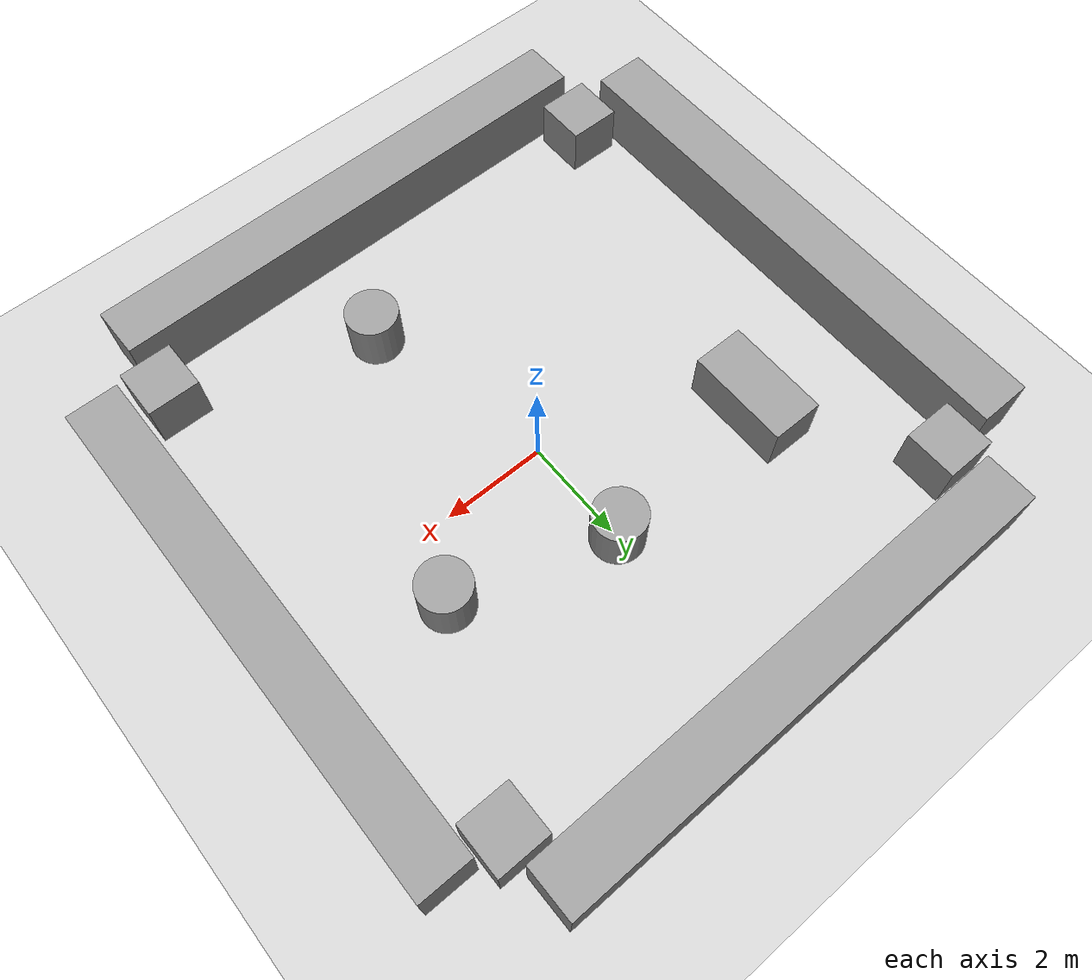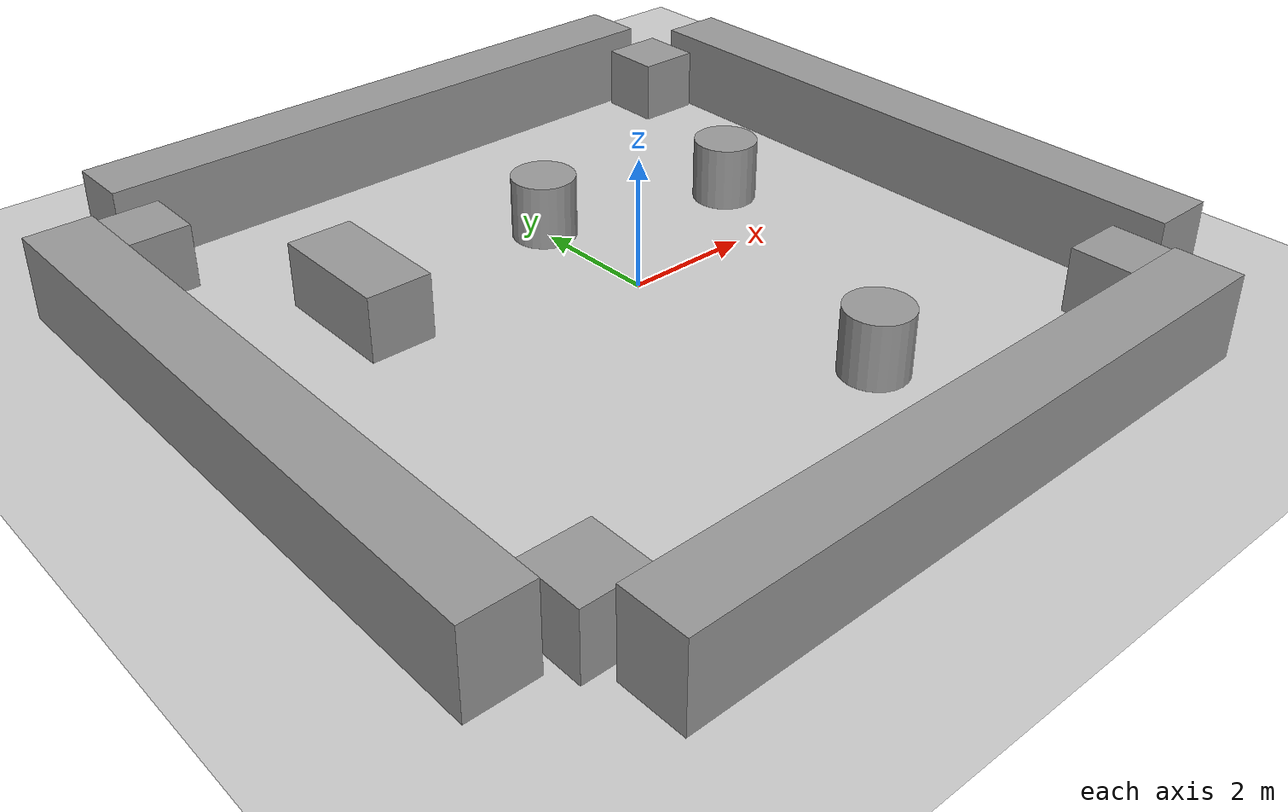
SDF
<sdf version="1.7">
 <world name="default">
  <light name="sun" type="directional">
   <pose>0 0 10 0 -0 0</pose>
   <diffuse>0.8 0.8 0.8 1</diffuse>
   <specular>0.2 0.2 0.2 1</specular>
   <attenuation>
    <range>1000</range>
    <constant>0.9</constant>
    <linear>0.01</linear>
    <quadratic>0.001</quadratic>
   </attenuation>
   <direction>-0.5 0.1 -0.9</direction>
   <spot><inner_angle>0</inner_angle><outer_angle>0</outer_angle><falloff>0</falloff></spot>
  </light>
  <model name="ground_plane">
   <static>1</static>
   <link name="link">
    <collision name="collision">
     <geometry><plane><normal>0 0 1</normal><size>100 100</size></plane></geometry>
     <surface>
      <contact><collide_bitmask>65535</collide_bitmask></contact>
      <friction><ode><mu>100</mu><mu2>50</mu2></ode></friction>
     </surface>
    </collision>
    <visual name="visual">
     <cast_shadows>0</cast_shadows>
     <geometry><plane><normal>0 0 1</normal><size>100 100</size></plane></geometry>
     <material>
      <script><uri>file://media/materials/scripts/gazebo.material</uri><name>Gazebo/Grey</name></script>
     </material>
    </visual>
   </link>
  </model>
  <gravity>0 0 -9.8</gravity>
  <magnetic_field>6e-06 2.3e-05 -4.2e-05</magnetic_field>
  <atmosphere type="adiabatic"/>
  <physics type="ode">
   <max_step_size>0.001</max_step_size>
   <real_time_factor>1</real_time_factor>
   <real_time_update_rate>1000</real_time_update_rate>
  </physics>
  <scene><ambient>0.4 0.4 0.4 1</ambient><background>0.7 0.7 0.7 1</background><shadows>1</shadows></scene>
  <spherical_coordinates>
   <surface_model>EARTH_WGS84</surface_model>
   <latitude_deg>0</latitude_deg>
   <longitude_deg>0</longitude_deg>
   <elevation>0</elevation>
   <heading_deg>0</heading_deg>
  </spherical_coordinates>
  <model name="unit_box">
   <link name="link">
    <inertial>
     <mass>1</mass>
     <inertia><ixx>2</ixx><ixy>0</ixy><ixz>0</ixz><iyy>100</iyy><iyz>0</iyz><izz>10</izz></inertia>
    </inertial>
    <pose>3.04176 0.115708 -0 0 -0 0</pose>
    <visual name="visual">
     <geometry><box><size>1 10 1.5</size></box></geometry>
     <material>
      <script><name>Gazebo/Grey</name><uri>file://media/materials/scripts/gazebo.material</uri></script>
      <shader type="pixel"><normal_map>__default__</normal_map></shader>
      <ambient>0.3 0.3 0.3 1</ambient>
      <diffuse>0.7 0.7 0.7 1</diffuse>
      <specular>0.01 0.01 0.01 1</specular>
      <emissive>0 0 0 1</emissive>
     </material>
    </visual>
    <collision name="collision">
     <geometry><box><size>1 10 1</size></box></geometry>
     <surface>
      <friction>
       <ode><mu>1</mu><mu2>1</mu2><fdir1>0 0 0</fdir1><slip1>0</slip1><slip2>0</slip2></ode>
       <torsional>
        <coefficient>1</coefficient>
        <patch_radius>0</patch_radius>
        <surface_radius>0</surface_radius>
        <use_patch_radius>1</use_patch_radius>
        <ode><slip>0</slip></ode>
       </torsional>
      </friction>
      <bounce><restitution_coefficient>0</restitution_coefficient><threshold>1e+06</threshold></bounce>
      <contact>
       <collide_without_contact>0</collide_without_contact>
       <collide_without_contact_bitmask>1</collide_without_contact_bitmask>
       <collide_bitmask>1</collide_bitmask>
       <ode>
        <soft_cfm>0</soft_cfm>
        <soft_erp>0.2</soft_erp>
        <kp>1e+13</kp>
        <kd>1</kd>
        <max_vel>0.01</max_vel>
        <min_depth>0</min_depth>
       </ode>
       <bullet>
        <split_impulse>1</split_impulse>
        <split_impulse_penetration_threshold>-0.01</split_impulse_penetration_threshold>
        <soft_cfm>0</soft_cfm>
        <soft_erp>0.2</soft_erp>
        <kp>1e+13</kp>
        <kd>1</kd>
       </bullet>
      </contact>
     </surface>
    </collision>
   </link>
   <link name="link_10">
    <inertial>
     <mass>1</mass>
     <inertia><ixx>0.145833</ixx><ixy>0</ixy><ixz>0</ixz><iyy>0.145833</iyy><iyz>0</iyz><izz>0.125</izz></inertia>
    </inertial>
    <pose>-1.77229 -3.46961 0 0 -0 0</pose>
    <visual name="visual">
     <geometry><cylinder><radius>0.5</radius><length>1</length></cylinder></geometry>
     <material>
      <lighting>1</lighting>
      <script><uri>file://media/materials/scripts/gazebo.material</uri><name>Gazebo/Grey</name></script>
      <shader type="pixel"/>
     </material>
    </visual>
    <collision name="collision">
     <geometry><cylinder><radius>0.5</radius><length>1</length></cylinder></geometry>
     <surface>
      <friction>
       <ode><mu>1</mu><mu2>1</mu2><fdir1>0 0 0</fdir1><slip1>0</slip1><slip2>0</slip2></ode>
       <torsional>
        <coefficient>1</coefficient>
        <patch_radius>0</patch_radius>
        <surface_radius>0</surface_radius>
        <use_patch_radius>1</use_patch_radius>
        <ode><slip>0</slip></ode>
       </torsional>
      </friction>
      <bounce><restitution_coefficient>0</restitution_coefficient><threshold>1e+06</threshold></bounce>
      <contact>
       <collide_without_contact>0</collide_without_contact>
       <collide_without_contact_bitmask>1</collide_without_contact_bitmask>
       <collide_bitmask>1</collide_bitmask>
       <ode>
        <soft_cfm>0</soft_cfm>
        <soft_erp>0.2</soft_erp>
        <kp>1e+13</kp>
        <kd>1</kd>
        <max_vel>0.01</max_vel>
        <min_depth>0</min_depth>
       </ode>
       <bullet>
        <split_impulse>1</split_impulse>
        <split_impulse_penetration_threshold>-0.01</split_impulse_penetration_threshold>
        <soft_cfm>0</soft_cfm>
        <soft_erp>0.2</soft_erp>
        <kp>1e+13</kp>
        <kd>1</kd>
       </bullet>
      </contact>
     </surface>
    </collision>
   </link>
   <link name="link_12">
    <inertial>
     <mass>1</mass>
     <inertia><ixx>0.145833</ixx><ixy>0</ixy><ixz>0</ixz><iyy>0.145833</iyy><iyz>0</iyz><izz>0.125</izz></inertia>
    </inertial>
    <pose>-2.62066 2.38376 -0 0 -0 0</pose>
    <visual name="visual">
     <geometry><cylinder><radius>0.5</radius><length>1</length></cylinder></geometry>
     <material>
      <lighting>1</lighting>
      <script><uri>file://media/materials/scripts/gazebo.material</uri><name>Gazebo/Grey</name></script>
      <shader type="pixel"/>
     </material>
    </visual>
    <collision name="collision">
     <geometry><cylinder><radius>0.5</radius><length>1</length></cylinder></geometry>
     <surface>
      <friction>
       <ode><mu>1</mu><mu2>1</mu2><fdir1>0 0 0</fdir1><slip1>0</slip1><slip2>0</slip2></ode>
       <torsional>
        <coefficient>1</coefficient>
        <patch_radius>0</patch_radius>
        <surface_radius>0</surface_radius>
        <use_patch_radius>1</use_patch_radius>
        <ode><slip>0</slip></ode>
       </torsional>
      </friction>
      <bounce><restitution_coefficient>0</restitution_coefficient><threshold>1e+06</threshold></bounce>
      <contact>
       <collide_without_contact>0</collide_without_contact>
       <collide_without_contact_bitmask>1</collide_without_contact_bitmask>
       <collide_bitmask>1</collide_bitmask>
       <ode>
        <soft_cfm>0</soft_cfm>
        <soft_erp>0.2</soft_erp>
        <kp>1e+13</kp>
        <kd>1</kd>
        <max_vel>0.01</max_vel>
        <min_depth>0</min_depth>
       </ode>
       <bullet>
        <split_impulse>1</split_impulse>
        <split_impulse_penetration_threshold>-0.01</split_impulse_penetration_threshold>
        <soft_cfm>0</soft_cfm>
        <soft_erp>0.2</soft_erp>
        <kp>1e+13</kp>
        <kd>1</kd>
       </bullet>
      </contact>
     </surface>
    </collision>
   </link>
   <link name="link_3">
    <inertial>
     <mass>1</mass>
     <inertia>
      <ixx>0.166667</ixx>
      <ixy>0</ixy>
      <ixz>0</ixz>
      <iyy>0.166667</iyy>
      <iyz>0</iyz>
      <izz>0.166667</izz>
     </inertia>
    </inertial>
    <pose>1.95999 5.03955 -0 0 -0 0</pose>
    <visual name="visual">
     <geometry><box><size>1 1 1</size></box></geometry>
     <material>
      <lighting>1</lighting>
      <script><uri>file://media/materials/scripts/gazebo.material</uri><name>Gazebo/Grey</name></script>
      <shader type="pixel"/>
     </material>
    </visual>
    <collision name="collision">
     <geometry><box><size>1 1 1</size></box></geometry>
     <surface>
      <friction>
       <ode><mu>1</mu><mu2>1</mu2><fdir1>0 0 0</fdir1><slip1>0</slip1><slip2>0</slip2></ode>
       <torsional>
        <coefficient>1</coefficient>
        <patch_radius>0</patch_radius>
        <surface_radius>0</surface_radius>
        <use_patch_radius>1</use_patch_radius>
        <ode><slip>0</slip></ode>
       </torsional>
      </friction>
      <bounce><restitution_coefficient>0</restitution_coefficient><threshold>1e+06</threshold></bounce>
      <contact>
       <collide_without_contact>0</collide_without_contact>
       <collide_without_contact_bitmask>1</collide_without_contact_bitmask>
       <collide_bitmask>1</collide_bitmask>
       <ode>
        <soft_cfm>0</soft_cfm>
        <soft_erp>0.2</soft_erp>
        <kp>1e+13</kp>
        <kd>1</kd>
        <max_vel>0.01</max_vel>
        <min_depth>0</min_depth>
       </ode>
       <bullet>
        <split_impulse>1</split_impulse>
        <split_impulse_penetration_threshold>-0.01</split_impulse_penetration_threshold>
        <soft_cfm>0</soft_cfm>
        <soft_erp>0.2</soft_erp>
        <kp>1e+13</kp>
        <kd>1</kd>
       </bullet>
      </contact>
     </surface>
    </collision>
   </link>
   <link name="link_4">
    <inertial>
     <mass>1</mass>
     <inertia>
      <ixx>0.166667</ixx>
      <ixy>0</ixy>
      <ixz>0</ixz>
      <iyy>0.166667</iyy>
      <iyz>0</iyz>
      <izz>0.166667</izz>
     </inertia>
    </inertial>
    <pose>1.90094 -4.69157 0 0 -0 0</pose>
    <visual name="visual">
     <geometry><box><size>1 1 1</size></box></geometry>
     <material>
      <lighting>1</lighting>
      <script><uri>file://media/materials/scripts/gazebo.material</uri><name>Gazebo/Grey</name></script>
      <shader type="pixel"/>
     </material>
    </visual>
    <collision name="collision">
     <geometry><box><size>1 1 1</size></box></geometry>
     <surface>
      <friction>
       <ode><mu>1</mu><mu2>1</mu2><fdir1>0 0 0</fdir1><slip1>0</slip1><slip2>0</slip2></ode>
       <torsional>
        <coefficient>1</coefficient>
        <patch_radius>0</patch_radius>
        <surface_radius>0</surface_radius>
        <use_patch_radius>1</use_patch_radius>
        <ode><slip>0</slip></ode>
       </torsional>
      </friction>
      <bounce><restitution_coefficient>0</restitution_coefficient><threshold>1e+06</threshold></bounce>
      <contact>
       <collide_without_contact>0</collide_without_contact>
       <collide_without_contact_bitmask>1</collide_without_contact_bitmask>
       <collide_bitmask>1</collide_bitmask>
       <ode>
        <soft_cfm>0</soft_cfm>
        <soft_erp>0.2</soft_erp>
        <kp>1e+13</kp>
        <kd>1</kd>
        <max_vel>0.01</max_vel>
        <min_depth>0</min_depth>
       </ode>
       <bullet>
        <split_impulse>1</split_impulse>
        <split_impulse_penetration_threshold>-0.01</split_impulse_penetration_threshold>
        <soft_cfm>0</soft_cfm>
        <soft_erp>0.2</soft_erp>
        <kp>1e+13</kp>
        <kd>1</kd>
       </bullet>
      </contact>
     </surface>
    </collision>
   </link>
   <link name="link_5">
    <inertial>
     <mass>1</mass>
     <inertia>
      <ixx>0.166667</ixx>
      <ixy>0</ixy>
      <ixz>0</ixz>
      <iyy>0.166667</iyy>
      <iyz>0</iyz>
      <izz>0.166667</izz>
     </inertia>
    </inertial>
    <pose>-7.78653 -4.76071 0 0 -0 0</pose>
    <visual name="visual">
     <geometry><box><size>1 1 1</size></box></geometry>
     <material>
      <lighting>1</lighting>
      <script><uri>file://media/materials/scripts/gazebo.material</uri><name>Gazebo/Grey</name></script>
      <shader type="pixel"/>
     </material>
    </visual>
    <collision name="collision">
     <geometry><box><size>1 1 1</size></box></geometry>
     <surface>
      <friction>
       <ode><mu>1</mu><mu2>1</mu2><fdir1>0 0 0</fdir1><slip1>0</slip1><slip2>0</slip2></ode>
       <torsional>
        <coefficient>1</coefficient>
        <patch_radius>0</patch_radius>
        <surface_radius>0</surface_radius>
        <use_patch_radius>1</use_patch_radius>
        <ode><slip>0</slip></ode>
       </torsional>
      </friction>
      <bounce><restitution_coefficient>0</restitution_coefficient><threshold>1e+06</threshold></bounce>
      <contact>
       <collide_without_contact>0</collide_without_contact>
       <collide_without_contact_bitmask>1</collide_without_contact_bitmask>
       <collide_bitmask>1</collide_bitmask>
       <ode>
        <soft_cfm>0</soft_cfm>
        <soft_erp>0.2</soft_erp>
        <kp>1e+13</kp>
        <kd>1</kd>
        <max_vel>0.01</max_vel>
        <min_depth>0</min_depth>
       </ode>
       <bullet>
        <split_impulse>1</split_impulse>
        <split_impulse_penetration_threshold>-0.01</split_impulse_penetration_threshold>
        <soft_cfm>0</soft_cfm>
        <soft_erp>0.2</soft_erp>
        <kp>1e+13</kp>
        <kd>1</kd>
       </bullet>
      </contact>
     </surface>
    </collision>
   </link>
   <link name="link_6">
    <inertial>
     <mass>1</mass>
     <inertia>
      <ixx>0.166667</ixx>
      <ixy>0</ixy>
      <ixz>0</ixz>
      <iyy>0.166667</iyy>
      <iyz>0</iyz>
      <izz>0.166667</izz>
     </inertia>
    </inertial>
    <pose>-7.86021 4.91937 -0 0 -0 0</pose>
    <visual name="visual">
     <geometry><box><size>1 1 1</size></box></geometry>
     <material>
      <lighting>1</lighting>
      <script><uri>file://media/materials/scripts/gazebo.material</uri><name>Gazebo/Grey</name></script>
      <shader type="pixel"/>
     </material>
    </visual>
    <collision name="collision">
     <geometry><box><size>1 1 1</size></box></geometry>
     <surface>
      <friction>
       <ode><mu>1</mu><mu2>1</mu2><fdir1>0 0 0</fdir1><slip1>0</slip1><slip2>0</slip2></ode>
       <torsional>
        <coefficient>1</coefficient>
        <patch_radius>0</patch_radius>
        <surface_radius>0</surface_radius>
        <use_patch_radius>1</use_patch_radius>
        <ode><slip>0</slip></ode>
       </torsional>
      </friction>
      <bounce><restitution_coefficient>0</restitution_coefficient><threshold>1e+06</threshold></bounce>
      <contact>
       <collide_without_contact>0</collide_without_contact>
       <collide_without_contact_bitmask>1</collide_without_contact_bitmask>
       <collide_bitmask>1</collide_bitmask>
       <ode>
        <soft_cfm>0</soft_cfm>
        <soft_erp>0.2</soft_erp>
        <kp>1e+13</kp>
        <kd>1</kd>
        <max_vel>0.01</max_vel>
        <min_depth>0</min_depth>
       </ode>
       <bullet>
        <split_impulse>1</split_impulse>
        <split_impulse_penetration_threshold>-0.01</split_impulse_penetration_threshold>
        <soft_cfm>0</soft_cfm>
        <soft_erp>0.2</soft_erp>
        <kp>1e+13</kp>
        <kd>1</kd>
       </bullet>
      </contact>
     </surface>
    </collision>
   </link>
   <link name="link_8">
    <inertial>
     <mass>1</mass>
     <inertia><ixx>0.145833</ixx><ixy>0</ixy><ixz>0</ixz><iyy>0.145833</iyy><iyz>0</iyz><izz>0.125</izz></inertia>
    </inertial>
    <pose>0.361877 1.50137 -0 0 -0 0</pose>
    <visual name="visual">
     <geometry><cylinder><radius>0.5</radius><length>1</length></cylinder></geometry>
     <material>
      <lighting>1</lighting>
      <script><uri>file://media/materials/scripts/gazebo.material</uri><name>Gazebo/Grey</name></script>
      <shader type="pixel"/>
     </material>
    </visual>
    <collision name="collision">
     <geometry><cylinder><radius>0.5</radius><length>1</length></cylinder></geometry>
     <surface>
      <friction>
       <ode><mu>1</mu><mu2>1</mu2><fdir1>0 0 0</fdir1><slip1>0</slip1><slip2>0</slip2></ode>
       <torsional>
        <coefficient>1</coefficient>
        <patch_radius>0</patch_radius>
        <surface_radius>0</surface_radius>
        <use_patch_radius>1</use_patch_radius>
        <ode><slip>0</slip></ode>
       </torsional>
      </friction>
      <bounce><restitution_coefficient>0</restitution_coefficient><threshold>1e+06</threshold></bounce>
      <contact>
       <collide_without_contact>0</collide_without_contact>
       <collide_without_contact_bitmask>1</collide_without_contact_bitmask>
       <collide_bitmask>1</collide_bitmask>
       <ode>
        <soft_cfm>0</soft_cfm>
        <soft_erp>0.2</soft_erp>
        <kp>1e+13</kp>
        <kd>1</kd>
        <max_vel>0.01</max_vel>
        <min_depth>0</min_depth>
       </ode>
       <bullet>
        <split_impulse>1</split_impulse>
        <split_impulse_penetration_threshold>-0.01</split_impulse_penetration_threshold>
        <soft_cfm>0</soft_cfm>
        <soft_erp>0.2</soft_erp>
        <kp>1e+13</kp>
        <kd>1</kd>
       </bullet>
      </contact>
     </surface>
    </collision>
   </link>
   <link name="link_9">
    <inertial>
     <mass>1</mass>
     <inertia>
      <ixx>0.166667</ixx>
      <ixy>0</ixy>
      <ixz>0</ixz>
      <iyy>0.166667</iyy>
      <iyz>0</iyz>
      <izz>0.166667</izz>
     </inertia>
    </inertial>
    <pose>-6.11199 2.03618 0 0 -0 0</pose>
    <visual name="visual">
     <geometry><box><size>1 2 1</size></box></geometry>
     <material>
      <lighting>1</lighting>
      <script><uri>file://media/materials/scripts/gazebo.material</uri><name>Gazebo/Grey</name></script>
      <shader type="pixel"><normal_map>__default__</normal_map></shader>
      <ambient>0.3 0.3 0.3 1</ambient>
      <diffuse>0.7 0.7 0.7 1</diffuse>
      <specular>0.01 0.01 0.01 1</specular>
      <emissive>0 0 0 1</emissive>
     </material>
    </visual>
    <collision name="collision">
     <geometry><box><size>1 2 1</size></box></geometry>
     <surface>
      <friction>
       <ode><mu>1</mu><mu2>1</mu2><fdir1>0 0 0</fdir1><slip1>0</slip1><slip2>0</slip2></ode>
       <torsional>
        <coefficient>1</coefficient>
        <patch_radius>0</patch_radius>
        <surface_radius>0</surface_radius>
        <use_patch_radius>1</use_patch_radius>
        <ode><slip>0</slip></ode>
       </torsional>
      </friction>
      <bounce><restitution_coefficient>0</restitution_coefficient><threshold>1e+06</threshold></bounce>
      <contact>
       <collide_without_contact>0</collide_without_contact>
       <collide_without_contact_bitmask>1</collide_without_contact_bitmask>
       <collide_bitmask>1</collide_bitmask>
       <ode>
        <soft_cfm>0</soft_cfm>
        <soft_erp>0.2</soft_erp>
        <kp>1e+13</kp>
        <kd>1</kd>
        <max_vel>0.01</max_vel>
        <min_depth>0</min_depth>
       </ode>
       <bullet>
        <split_impulse>1</split_impulse>
        <split_impulse_penetration_threshold>-0.01</split_impulse_penetration_threshold>
        <soft_cfm>0</soft_cfm>
        <soft_erp>0.2</soft_erp>
        <kp>1e+13</kp>
        <kd>1</kd>
       </bullet>
      </contact>
     </surface>
    </collision>
   </link>
   <link name="link_clone">
    <inertial>
     <mass>1</mass>
     <inertia><ixx>2</ixx><ixy>0</ixy><ixz>0</ixz><iyy>100</iyy><iyz>0</iyz><izz>10</izz></inertia>
    </inertial>
    <pose>-2.95824 -5.88429 -0 0 -0 1.57962</pose>
    <visual name="visual">
     <geometry><box><size>1 10 1.5</size></box></geometry>
     <material>
      <script><name>Gazebo/Grey</name><uri>file://media/materials/scripts/gazebo.material</uri></script>
      <shader type="pixel"><normal_map>__default__</normal_map></shader>
      <ambient>0.3 0.3 0.3 1</ambient>
      <diffuse>0.7 0.7 0.7 1</diffuse>
      <specular>0.01 0.01 0.01 1</specular>
      <emissive>0 0 0 1</emissive>
     </material>
    </visual>
    <collision name="collision">
     <geometry><box><size>1 10 1</size></box></geometry>
     <surface>
      <friction>
       <ode><mu>1</mu><mu2>1</mu2><fdir1>0 0 0</fdir1><slip1>0</slip1><slip2>0</slip2></ode>
       <torsional>
        <coefficient>1</coefficient>
        <patch_radius>0</patch_radius>
        <surface_radius>0</surface_radius>
        <use_patch_radius>1</use_patch_radius>
        <ode><slip>0</slip></ode>
       </torsional>
      </friction>
      <bounce><restitution_coefficient>0</restitution_coefficient><threshold>1e+06</threshold></bounce>
      <contact>
       <collide_without_contact>0</collide_without_contact>
       <collide_without_contact_bitmask>1</collide_without_contact_bitmask>
       <collide_bitmask>1</collide_bitmask>
       <ode>
        <soft_cfm>0</soft_cfm>
        <soft_erp>0.2</soft_erp>
        <kp>1e+13</kp>
        <kd>1</kd>
        <max_vel>0.01</max_vel>
        <min_depth>0</min_depth>
       </ode>
       <bullet>
        <split_impulse>1</split_impulse>
        <split_impulse_penetration_threshold>-0.01</split_impulse_penetration_threshold>
        <soft_cfm>0</soft_cfm>
        <soft_erp>0.2</soft_erp>
        <kp>1e+13</kp>
        <kd>1</kd>
       </bullet>
      </contact>
     </surface>
    </collision>
   </link>
   <link name="link_clone_0">
    <inertial>
     <mass>1</mass>
     <inertia><ixx>2</ixx><ixy>0</ixy><ixz>0</ixz><iyy>100</iyy><iyz>0</iyz><izz>10</izz></inertia>
    </inertial>
    <pose>-8.95824 0.115708 0 0 -0 0</pose>
    <visual name="visual">
     <geometry><box><size>1 10 1.5</size></box></geometry>
     <material>
      <script><name>Gazebo/Grey</name><uri>file://media/materials/scripts/gazebo.material</uri></script>
      <shader type="pixel"><normal_map>__default__</normal_map></shader>
      <ambient>0.3 0.3 0.3 1</ambient>
      <diffuse>0.7 0.7 0.7 1</diffuse>
      <specular>0.01 0.01 0.01 1</specular>
      <emissive>0 0 0 1</emissive>
     </material>
    </visual>
    <collision name="collision">
     <geometry><box><size>1 10 1</size></box></geometry>
     <surface>
      <friction>
       <ode><mu>1</mu><mu2>1</mu2><fdir1>0 0 0</fdir1><slip1>0</slip1><slip2>0</slip2></ode>
       <torsional>
        <coefficient>1</coefficient>
        <patch_radius>0</patch_radius>
        <surface_radius>0</surface_radius>
        <use_patch_radius>1</use_patch_radius>
        <ode><slip>0</slip></ode>
       </torsional>
      </friction>
      <bounce><restitution_coefficient>0</restitution_coefficient><threshold>1e+06</threshold></bounce>
      <contact>
       <collide_without_contact>0</collide_without_contact>
       <collide_without_contact_bitmask>1</collide_without_contact_bitmask>
       <collide_bitmask>1</collide_bitmask>
       <ode>
        <soft_cfm>0</soft_cfm>
        <soft_erp>0.2</soft_erp>
        <kp>1e+13</kp>
        <kd>1</kd>
        <max_vel>0.01</max_vel>
        <min_depth>0</min_depth>
       </ode>
       <bullet>
        <split_impulse>1</split_impulse>
        <split_impulse_penetration_threshold>-0.01</split_impulse_penetration_threshold>
        <soft_cfm>0</soft_cfm>
        <soft_erp>0.2</soft_erp>
        <kp>1e+13</kp>
        <kd>1</kd>
       </bullet>
      </contact>
     </surface>
    </collision>
   </link>
   <link name="link_clone_clone">
    <inertial>
     <mass>1</mass>
     <inertia><ixx>2</ixx><ixy>0</ixy><ixz>0</ixz><iyy>100</iyy><iyz>0</iyz><izz>10</izz></inertia>
    </inertial>
    <pose>-2.95824 6.11571 0 0 -0 1.57962</pose>
    <visual name="visual">
     <geometry><box><size>1 10 1.5</size></box></geometry>
     <material>
      <script><name>Gazebo/Grey</name><uri>file://media/materials/scripts/gazebo.material</uri></script>
      <shader type="pixel"><normal_map>__default__</normal_map></shader>
      <ambient>0.3 0.3 0.3 1</ambient>
      <diffuse>0.7 0.7 0.7 1</diffuse>
      <specular>0.01 0.01 0.01 1</specular>
      <emissive>0 0 0 1</emissive>
     </material>
    </visual>
    <collision name="collision">
     <geometry><box><size>1 10 1</size></box></geometry>
     <surface>
      <friction>
       <ode><mu>1</mu><mu2>1</mu2><fdir1>0 0 0</fdir1><slip1>0</slip1><slip2>0</slip2></ode>
       <torsional>
        <coefficient>1</coefficient>
        <patch_radius>0</patch_radius>
        <surface_radius>0</surface_radius>
        <use_patch_radius>1</use_patch_radius>
        <ode><slip>0</slip></ode>
       </torsional>
      </friction>
      <bounce><restitution_coefficient>0</restitution_coefficient><threshold>1e+06</threshold></bounce>
      <contact>
       <collide_without_contact>0</collide_without_contact>
       <collide_without_contact_bitmask>1</collide_without_contact_bitmask>
       <collide_bitmask>1</collide_bitmask>
       <ode>
        <soft_cfm>0</soft_cfm>
        <soft_erp>0.2</soft_erp>
        <kp>1e+13</kp>
        <kd>1</kd>
        <max_vel>0.01</max_vel>
        <min_depth>0</min_depth>
       </ode>
       <bullet>
        <split_impulse>1</split_impulse>
        <split_impulse_penetration_threshold>-0.01</split_impulse_penetration_threshold>
        <soft_cfm>0</soft_cfm>
        <soft_erp>0.2</soft_erp>
        <kp>1e+13</kp>
        <kd>1</kd>
       </bullet>
      </contact>
     </surface>
    </collision>
   </link>
   <static>0</static>
   <pose>2.61181 -0.241896 0.499994 -3e-06 3e-06 -7e-06</pose>
  </model>
 </world>
</sdf>
